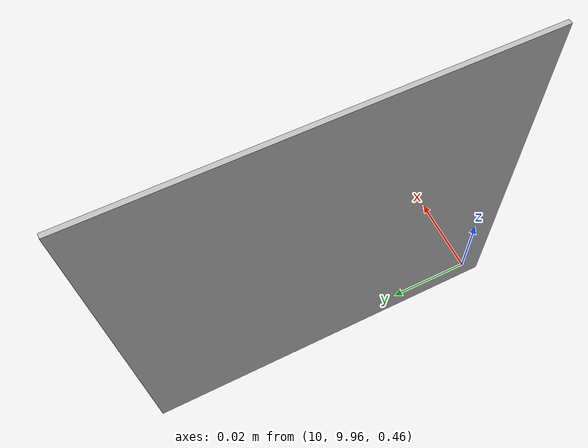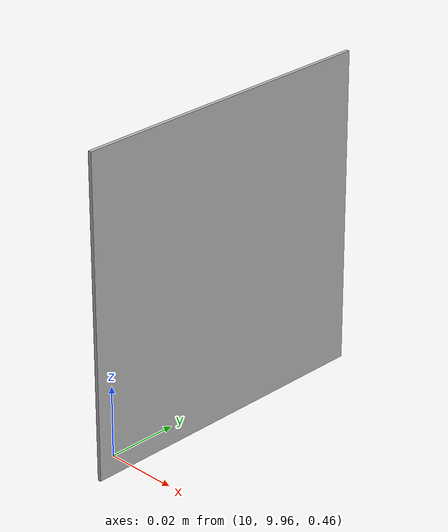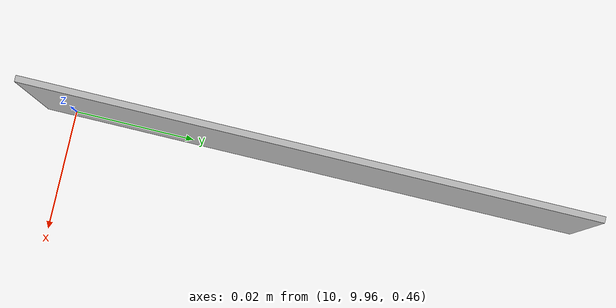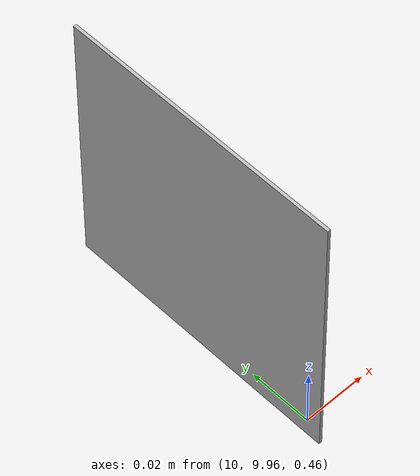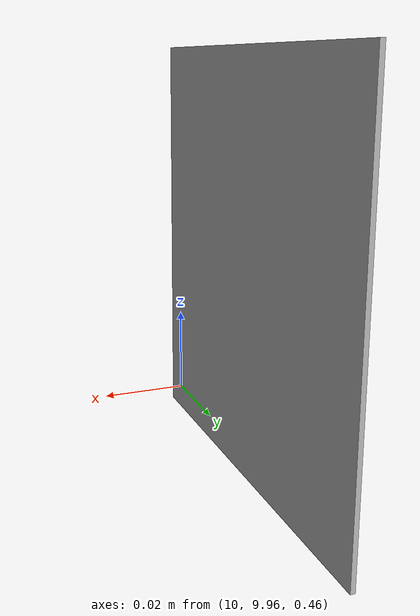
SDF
<?xml version="1.0" ?>
<sdf version="1.4">
  <world name="default">
    <physics type="ode">
      <gravity>0 0 -9.81</gravity>
      <ode>
        <solver>
          <type>quick</type>
          <iters>20</iters>
          <sor>1.0</sor>
        </solver>
        <constraints>
          <cfm>0.0</cfm>
          <erp>0.2</erp>
          <contact_max_correcting_vel>100.0</contact_max_correcting_vel>
          <contact_surface_layer>0.0</contact_surface_layer>
        </constraints>
      </ode>
      <real_time_update_rate>1000</real_time_update_rate>
      <max_step_size>0.001</max_step_size>
    </physics>
    <!-- A global light source -->
    <include>
      <uri>model://sun</uri>
    </include>
    <!-- A ground plane -->
    <include>
      <uri>model://ground_plane</uri>
    </include>
    <!-- AR marker -->
    <include>
      <uri>model://aruco_marker</uri>
      <pose>10 10 0.5 0 1.5707 0</pose>
    </include>
    <!-- Add a light on top of REEM and the marker -->
  </world>
</sdf>

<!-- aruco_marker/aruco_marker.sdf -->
<sdf version="1.4">
  <model name="aruco_marker">
    <static>0</static>
    <link name="marker">
      <gravity>false</gravity>
      <visual name="visual">
        <geometry>
          <box>
            <size>0.09 0.09 0.001</size>
            <!-- SIZE OF THE MARKER + MARGIN -->
          </box>
        </geometry>
        <material>
          <script>
	          <uri>model://aruco_marker/material/scripts</uri>
	          <uri>model://aruco_marker/material/textures</uri>
            <name>aruco_marker</name>
          </script>
        </material>
      </visual>
      <collision name="collision">
        <geometry>
          <box>
            <size>0.09 0.09 0.02</size>
            <!-- SIZE OF THE MARKER + MARGIN -->
          </box>
        </geometry>
      </collision>
    </link>
  </model>
</sdf>
